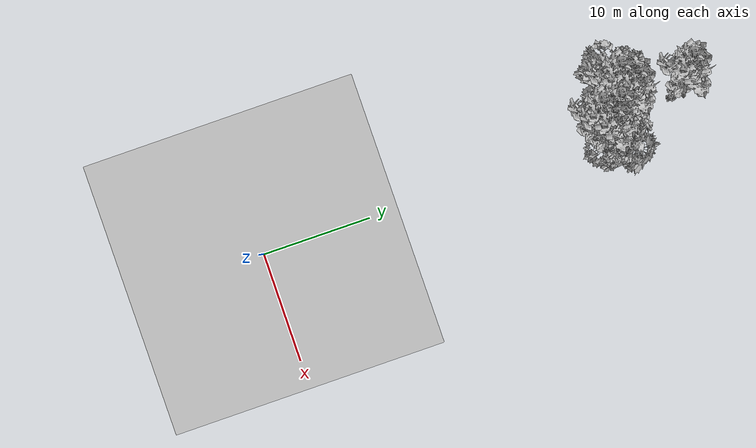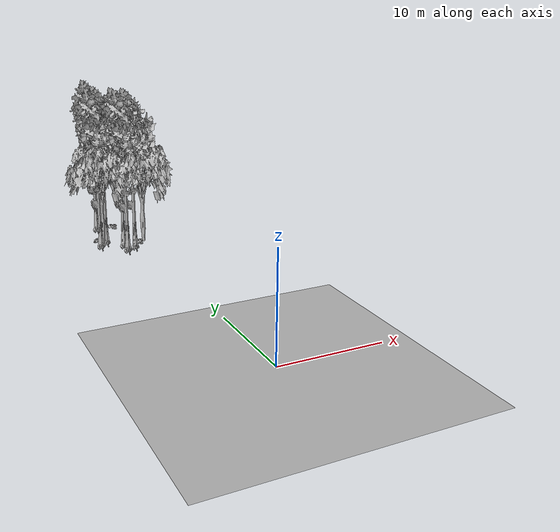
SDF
<sdf version="1.7">
 <world name="default">
  <model name="ground_plane">
   <static>1</static>
   <link name="link">
    <collision name="collision">
     <pose>-50 0 0 0 -0 0</pose>
     <geometry><plane><normal>0 0 1</normal><size>80 80</size></plane></geometry>
     <surface><contact><ode><min_depth>0.01</min_depth><max_vel>0</max_vel></ode></contact></surface>
    </collision>
    <visual name="grass">
     <cast_shadows>0</cast_shadows>
     <geometry>
      <mesh>
       <scale>0.46714285714285714 0.46714285714285714 0.1</scale>
       <uri>file://grass_plane/meshes/grass_plane.dae</uri>
      </mesh>
     </geometry>
    </visual>
   </link>
  </model>
  <model name="Tree 110">
   <static>1</static>
   <pose>-4.062183235016505 33.9844316542201 0 1.57079 -0 0</pose>
   <link name="link">
    <collision name="collision">
     <geometry><mesh><scale>3.5 5 3.5</scale><uri>model://tree_2/meshes/tree_2.obj</uri></mesh></geometry>
    </collision>
    <visual name="visual">
     <geometry><mesh><scale>3.5 5 3.5</scale><uri>model://tree_2/meshes/tree_2.obj</uri></mesh></geometry>
    </visual>
   </link>
  </model>
  <model name="Tree 162">
   <static>1</static>
   <pose>-1.9143117973892032 31.529153069389096 0 1.57079 -0 0</pose>
   <link name="link">
    <collision name="collision">
     <geometry><mesh><scale>3.5 5 3.5</scale><uri>model://tree_9/meshes/tree_9.obj</uri></mesh></geometry>
    </collision>
    <visual name="visual">
     <geometry><mesh><scale>3.5 5 3.5</scale><uri>model://tree_9/meshes/tree_9.obj</uri></mesh></geometry>
    </visual>
   </link>
  </model>
  <model name="Tree 201">
   <static>1</static>
   <pose>-1.8881131271435194 33.105144911039346 0 1.57079 -0 0</pose>
   <link name="link">
    <collision name="collision">
     <geometry><mesh><scale>3.5 5 3.5</scale><uri>model://tree_9/meshes/tree_9.obj</uri></mesh></geometry>
    </collision>
    <visual name="visual">
     <geometry><mesh><scale>3.5 5 3.5</scale><uri>model://tree_9/meshes/tree_9.obj</uri></mesh></geometry>
    </visual>
   </link>
  </model>
  <model name="Tree 294">
   <static>1</static>
   <pose>-3.348503912528649 35.01744685466376 0 1.57079 -0 0</pose>
   <link name="link">
    <collision name="collision">
     <geometry><mesh><scale>3.5 5 3.5</scale><uri>model://tree_9/meshes/tree_9.obj</uri></mesh></geometry>
    </collision>
    <visual name="visual">
     <geometry><mesh><scale>3.5 5 3.5</scale><uri>model://tree_9/meshes/tree_9.obj</uri></mesh></geometry>
    </visual>
   </link>
  </model>
  <model name="Tree 308">
   <static>1</static>
   <pose>0.27308160498846235 32.74894090240663 0 1.57079 -0 0</pose>
   <link name="link">
    <collision name="collision">
     <geometry><mesh><scale>3.5 5 3.5</scale><uri>model://tree_2/meshes/tree_2.obj</uri></mesh></geometry>
    </collision>
    <visual name="visual">
     <geometry><mesh><scale>3.5 5 3.5</scale><uri>model://tree_2/meshes/tree_2.obj</uri></mesh></geometry>
    </visual>
   </link>
  </model>
  <model name="Tree 319">
   <static>1</static>
   <pose>-0.8570013083317747 32.15900535657393 0 1.57079 -0 0</pose>
   <link name="link">
    <collision name="collision">
     <geometry><mesh><scale>3.5 5 3.5</scale><uri>model://tree_9/meshes/tree_9.obj</uri></mesh></geometry>
    </collision>
    <visual name="visual">
     <geometry><mesh><scale>3.5 5 3.5</scale><uri>model://tree_9/meshes/tree_9.obj</uri></mesh></geometry>
    </visual>
   </link>
  </model>
  <model name="Tree 352">
   <static>1</static>
   <pose>-4.309565273403855 33.930538945239775 0 1.57079 -0 0</pose>
   <link name="link">
    <collision name="collision">
     <geometry><mesh><scale>3.5 5 3.5</scale><uri>model://tree_9/meshes/tree_9.obj</uri></mesh></geometry>
    </collision>
    <visual name="visual">
     <geometry><mesh><scale>3.5 5 3.5</scale><uri>model://tree_9/meshes/tree_9.obj</uri></mesh></geometry>
    </visual>
   </link>
  </model>
  <model name="Tree 385">
   <static>1</static>
   <pose>-3.0987438684589463 39.94272192729996 0 1.57079 -0 0</pose>
   <link name="link">
    <collision name="collision">
     <geometry><mesh><scale>3.5 5 3.5</scale><uri>model://tree_9/meshes/tree_9.obj</uri></mesh></geometry>
    </collision>
    <visual name="visual">
     <geometry><mesh><scale>3.5 5 3.5</scale><uri>model://tree_9/meshes/tree_9.obj</uri></mesh></geometry>
    </visual>
   </link>
  </model>
  <model name="Bush 88">
   <static>1</static>
   <pose>-4.339855527426991 34.41071921503524 0 1.57079 -0 0</pose>
   <link name="link">
    <collision name="collision">
     <geometry><mesh><scale>2 2 2</scale><uri>model://bush_2/meshes/bush_2.obj</uri></mesh></geometry>
     <surface><contact><collide_without_contact>false</collide_without_contact></contact></surface>
    </collision>
    <visual name="visual">
     <geometry><mesh><scale>2 2 2</scale><uri>model://bush_2/meshes/bush_2.obj</uri></mesh></geometry>
    </visual>
   </link>
  </model>
  <model name="Bush 105">
   <static>1</static>
   <pose>-4.425786891608112 34.43980877764186 0 1.57079 -0 0</pose>
   <link name="link">
    <collision name="collision">
     <geometry><mesh><scale>2 2 2</scale><uri>model://bush_2/meshes/bush_2.obj</uri></mesh></geometry>
     <surface><contact><collide_without_contact>false</collide_without_contact></contact></surface>
    </collision>
    <visual name="visual">
     <geometry><mesh><scale>2 2 2</scale><uri>model://bush_2/meshes/bush_2.obj</uri></mesh></geometry>
    </visual>
   </link>
  </model>
  <model name="Bush 569">
   <static>1</static>
   <pose>-0.3801981709879527 32.46465302904703 0 1.57079 -0 0</pose>
   <link name="link">
    <collision name="collision">
     <geometry><mesh><scale>2 2 2</scale><uri>model://bush_2/meshes/bush_2.obj</uri></mesh></geometry>
     <surface><contact><collide_without_contact>false</collide_without_contact></contact></surface>
    </collision>
    <visual name="visual">
     <geometry><mesh><scale>2 2 2</scale><uri>model://bush_2/meshes/bush_2.obj</uri></mesh></geometry>
    </visual>
   </link>
  </model>
  <model name="Bush 600">
   <static>1</static>
   <pose>-1.5004372280962457 38.781232072405714 0 1.57079 -0 0</pose>
   <link name="link">
    <collision name="collision">
     <geometry><mesh><scale>2 2 2</scale><uri>model://bush_2/meshes/bush_2.obj</uri></mesh></geometry>
     <surface><contact><collide_without_contact>false</collide_without_contact></contact></surface>
    </collision>
    <visual name="visual">
     <geometry><mesh><scale>2 2 2</scale><uri>model://bush_2/meshes/bush_2.obj</uri></mesh></geometry>
    </visual>
   </link>
  </model>
 </world>
</sdf>
